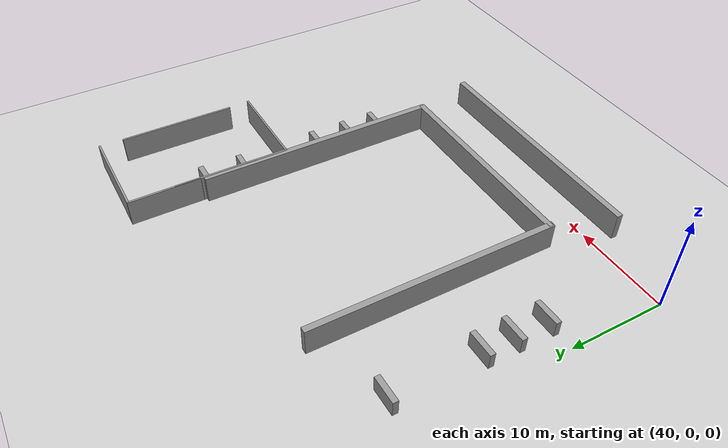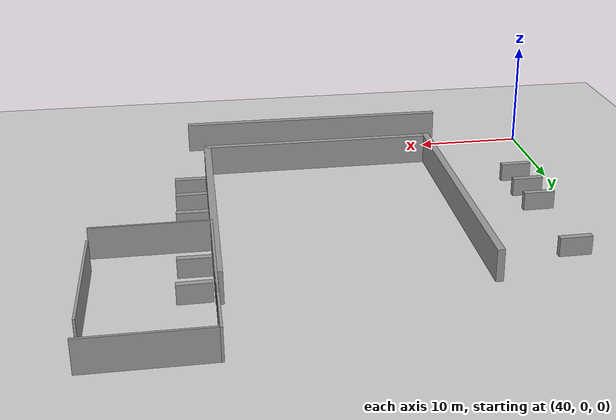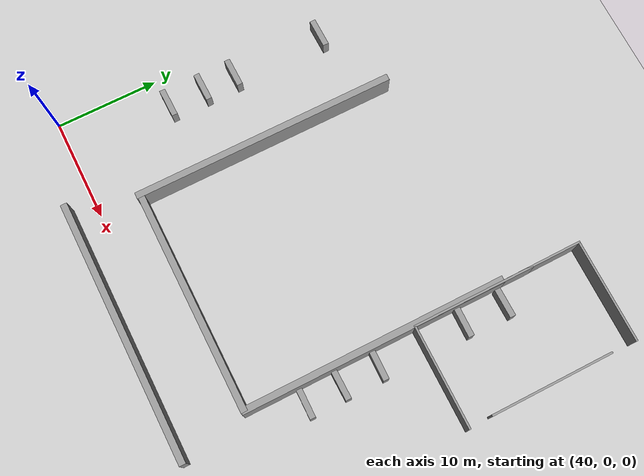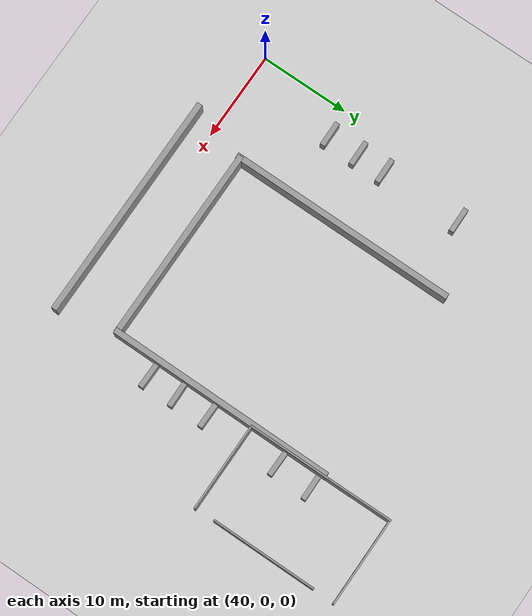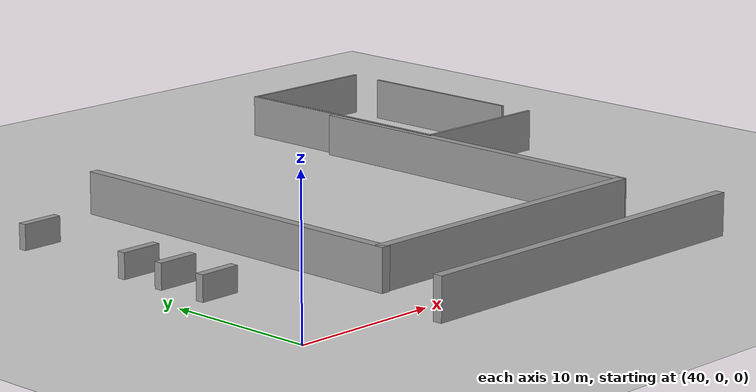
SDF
<sdf version="1.7">
 <world name="default">
  <model name="ground_plane">
   <static>1</static>
   <link name="link">
    <collision name="collision">
     <geometry><plane><normal>0 0 1</normal><size>100 100</size></plane></geometry>
     <surface><friction><ode><mu>100</mu><mu2>50</mu2></ode></friction></surface>
    </collision>
    <visual name="visual">
     <cast_shadows>0</cast_shadows>
     <geometry><plane><normal>0 0 1</normal><size>100 100</size></plane></geometry>
     <material>
      <script><uri>file://media/materials/scripts/gazebo.material</uri><name>Gazebo/Grey</name></script>
     </material>
    </visual>
   </link>
  </model>
  <model name="grey_wall_long_1">
   <link name="link">
    <pose>0 0 1.37589 0 -0 0</pose>
    <inertial>
     <inertia><ixx>0</ixx><ixy>0</ixy><ixz>0</ixz><iyy>0</iyy><iyz>0</iyz><izz>0</izz></inertia>
     <mass>0</mass>
    </inertial>
    <visual name="visual">
     <cast_shadows>0</cast_shadows>
     <geometry><box><size>25.8815 0.642976 2.8</size></box></geometry>
     <material>
      <script>
       <uri>model://grey_wall/materials/scripts</uri>
       <uri>model://grey_wall/materials/textures</uri>
       <name>vrc/grey_wall</name>
      </script>
      <shader type="pixel"><normal_map>__default__</normal_map></shader>
      <ambient>1 1 1 1</ambient>
      <diffuse>1 1 1 1</diffuse>
      <specular>0 0 0 1</specular>
      <emissive>0 0 0 1</emissive>
     </material>
    </visual>
    <collision name="collision">
     <geometry><box><size>25.8815 0.642976 2.8</size></box></geometry>
     <surface>
      <friction>
       <ode><mu>1</mu><mu2>1</mu2><fdir1>0 0 0</fdir1><slip1>0</slip1><slip2>0</slip2></ode>
       <torsional>
        <coefficient>1</coefficient>
        <patch_radius>0</patch_radius>
        <surface_radius>0</surface_radius>
        <use_patch_radius>1</use_patch_radius>
        <ode><slip>0</slip></ode>
       </torsional>
      </friction>
      <bounce><restitution_coefficient>0</restitution_coefficient><threshold>1e+06</threshold></bounce>
      <contact>
       <collide_without_contact>0</collide_without_contact>
       <collide_without_contact_bitmask>1</collide_without_contact_bitmask>
       <collide_bitmask>1</collide_bitmask>
       <ode>
        <soft_cfm>0</soft_cfm>
        <soft_erp>0.2</soft_erp>
        <kp>1e+13</kp>
        <kd>1</kd>
        <max_vel>0.01</max_vel>
        <min_depth>0</min_depth>
       </ode>
       <bullet>
        <split_impulse>1</split_impulse>
        <split_impulse_penetration_threshold>-0.01</split_impulse_penetration_threshold>
        <soft_cfm>0</soft_cfm>
        <soft_erp>0.2</soft_erp>
        <kp>1e+13</kp>
        <kd>1</kd>
       </bullet>
      </contact>
     </surface>
    </collision>
   </link>
   <static>1</static>
   <pose>61.3257 -2.37865 0 0 -0 0</pose>
  </model>
  <model name="grew_wall_long_vertial_1_clone_clone_2">
   <model name="grey_wall_long">
    <link name="link">
     <pose>0 0 1.37589 0 -0 0</pose>
     <inertial>
      <inertia><ixx>0</ixx><ixy>0</ixy><ixz>0</ixz><iyy>0</iyy><iyz>0</iyz><izz>0</izz></inertia>
      <mass>0</mass>
     </inertial>
     <visual name="visual">
      <cast_shadows>0</cast_shadows>
      <geometry><box><size>25.8815 0.642976 2.8</size></box></geometry>
      <material>
       <script>
        <uri>model://grey_wall/materials/scripts</uri>
        <uri>model://grey_wall/materials/textures</uri>
        <name>vrc/grey_wall</name>
       </script>
       <shader type="pixel"><normal_map>__default__</normal_map></shader>
       <ambient>1 1 1 1</ambient>
       <diffuse>1 1 1 1</diffuse>
       <specular>0 0 0 1</specular>
       <emissive>0 0 0 1</emissive>
      </material>
     </visual>
     <collision name="collision">
      <geometry><box><size>25.8815 0.642976 2.8</size></box></geometry>
      <surface>
       <friction>
        <ode><mu>1</mu><mu2>1</mu2><fdir1>0 0 0</fdir1><slip1>0</slip1><slip2>0</slip2></ode>
        <torsional>
         <coefficient>1</coefficient>
         <patch_radius>0</patch_radius>
         <surface_radius>0</surface_radius>
         <use_patch_radius>1</use_patch_radius>
         <ode><slip>0</slip></ode>
        </torsional>
       </friction>
       <bounce><restitution_coefficient>0</restitution_coefficient><threshold>1e+06</threshold></bounce>
       <contact>
        <collide_without_contact>0</collide_without_contact>
        <collide_without_contact_bitmask>1</collide_without_contact_bitmask>
        <collide_bitmask>1</collide_bitmask>
        <ode>
         <soft_cfm>0</soft_cfm>
         <soft_erp>0.2</soft_erp>
         <kp>1e+13</kp>
         <kd>1</kd>
         <max_vel>0.01</max_vel>
         <min_depth>0</min_depth>
        </ode>
        <bullet>
         <split_impulse>1</split_impulse>
         <split_impulse_penetration_threshold>-0.01</split_impulse_penetration_threshold>
         <soft_cfm>0</soft_cfm>
         <soft_erp>0.2</soft_erp>
         <kp>1e+13</kp>
         <kd>1</kd>
        </bullet>
       </contact>
      </surface>
     </collision>
    </link>
    <static>1</static>
    <pose>1e-06 -0 0 0 -0 1.57003</pose>
   </model>
   <static>0</static>
   <pose>50.6699 16.7376 0 0 -0 0</pose>
  </model>
  <model name="grey_wall_long_term_clone_1">
   <link name="link">
    <pose>-1.74587 -0.378849 1.37589 0 -0 0</pose>
    <inertial>
     <inertia><ixx>0</ixx><ixy>0</ixy><ixz>0</ixz><iyy>0</iyy><iyz>0</iyz><izz>0</izz></inertia>
     <mass>0</mass>
    </inertial>
    <visual name="visual">
     <cast_shadows>0</cast_shadows>
     <geometry><box><size>22.1596 0.642976 2.8</size></box></geometry>
     <material>
      <script>
       <uri>model://grey_wall/materials/scripts</uri>
       <uri>model://grey_wall/materials/textures</uri>
       <name>vrc/grey_wall</name>
      </script>
      <shader type="pixel"><normal_map>__default__</normal_map></shader>
      <ambient>1 1 1 1</ambient>
      <diffuse>1 1 1 1</diffuse>
      <specular>0 0 0 1</specular>
      <emissive>0 0 0 1</emissive>
     </material>
    </visual>
    <collision name="collision">
     <geometry><box><size>22.1596 0.642976 2.8</size></box></geometry>
     <surface>
      <friction>
       <ode><mu>1</mu><mu2>1</mu2><fdir1>0 0 0</fdir1><slip1>0</slip1><slip2>0</slip2></ode>
       <torsional>
        <coefficient>1</coefficient>
        <patch_radius>0</patch_radius>
        <surface_radius>0</surface_radius>
        <use_patch_radius>1</use_patch_radius>
        <ode><slip>0</slip></ode>
       </torsional>
      </friction>
      <bounce><restitution_coefficient>0</restitution_coefficient><threshold>1e+06</threshold></bounce>
      <contact>
       <collide_without_contact>0</collide_without_contact>
       <collide_without_contact_bitmask>1</collide_without_contact_bitmask>
       <collide_bitmask>1</collide_bitmask>
       <ode>
        <soft_cfm>0</soft_cfm>
        <soft_erp>0.2</soft_erp>
        <kp>1e+13</kp>
        <kd>1</kd>
        <max_vel>0.01</max_vel>
        <min_depth>0</min_depth>
       </ode>
       <bullet>
        <split_impulse>1</split_impulse>
        <split_impulse_penetration_threshold>-0.01</split_impulse_penetration_threshold>
        <soft_cfm>0</soft_cfm>
        <soft_erp>0.2</soft_erp>
        <kp>1e+13</kp>
        <kd>1</kd>
       </bullet>
      </contact>
     </surface>
    </collision>
   </link>
   <static>1</static>
   <pose>63.3055 4.59056 0 0 -0 0</pose>
  </model>
  <model name="grew_wall_long_vertial_1_clone_clone_4">
   <model name="grey_wall_long">
    <link name="link">
     <pose>0 0 1.37589 0 -0 0</pose>
     <inertial>
      <inertia><ixx>0</ixx><ixy>0</ixy><ixz>0</ixz><iyy>0</iyy><iyz>0</iyz><izz>0</izz></inertia>
      <mass>0</mass>
     </inertial>
     <visual name="visual">
      <cast_shadows>0</cast_shadows>
      <geometry><box><size>25.8815 0.642976 2.8</size></box></geometry>
      <material>
       <script>
        <uri>model://grey_wall/materials/scripts</uri>
        <uri>model://grey_wall/materials/textures</uri>
        <name>vrc/grey_wall</name>
       </script>
       <shader type="pixel"><normal_map>__default__</normal_map></shader>
       <ambient>1 1 1 1</ambient>
       <diffuse>1 1 1 1</diffuse>
       <specular>0 0 0 1</specular>
       <emissive>0 0 0 1</emissive>
      </material>
     </visual>
     <collision name="collision">
      <geometry><box><size>25.8815 0.642976 2.8</size></box></geometry>
      <surface>
       <friction>
        <ode><mu>1</mu><mu2>1</mu2><fdir1>0 0 0</fdir1><slip1>0</slip1><slip2>0</slip2></ode>
        <torsional>
         <coefficient>1</coefficient>
         <patch_radius>0</patch_radius>
         <surface_radius>0</surface_radius>
         <use_patch_radius>1</use_patch_radius>
         <ode><slip>0</slip></ode>
        </torsional>
       </friction>
       <bounce><restitution_coefficient>0</restitution_coefficient><threshold>1e+06</threshold></bounce>
       <contact>
        <collide_without_contact>0</collide_without_contact>
        <collide_without_contact_bitmask>1</collide_without_contact_bitmask>
        <collide_bitmask>1</collide_bitmask>
        <ode>
         <soft_cfm>0</soft_cfm>
         <soft_erp>0.2</soft_erp>
         <kp>1e+13</kp>
         <kd>1</kd>
         <max_vel>0.01</max_vel>
         <min_depth>0</min_depth>
        </ode>
        <bullet>
         <split_impulse>1</split_impulse>
         <split_impulse_penetration_threshold>-0.01</split_impulse_penetration_threshold>
         <soft_cfm>0</soft_cfm>
         <soft_erp>0.2</soft_erp>
         <kp>1e+13</kp>
         <kd>1</kd>
        </bullet>
       </contact>
      </surface>
     </collision>
    </link>
    <static>1</static>
    <pose>1e-06 -0 0 0 -0 1.57003</pose>
   </model>
   <static>0</static>
   <pose>72.5067 16.8857 0 0 -0 0</pose>
  </model>
  <model name="jiaoshi_clone_clone_clone_0_clone_0">
   <model name="grey_wall">
    <static>1</static>
    <link name="link">
     <pose>0 0 1.4 0 -0 0</pose>
     <collision name="collision"><geometry><box><size>7.5 0.2 2.8</size></box></geometry></collision>
     <visual name="visual">
      <cast_shadows>0</cast_shadows>
      <geometry><box><size>7.5 0.2 2.8</size></box></geometry>
      <material>
       <script>
        <uri>model://grey_wall/materials/scripts</uri>
        <uri>model://grey_wall/materials/textures</uri>
        <name>vrc/grey_wall</name>
       </script>
      </material>
     </visual>
    </link>
    <pose>-3.38172 4.2623 0 0 0 -1.56473</pose>
   </model>
   <model name="grey_wall_10m">
    <link name="link">
     <pose>1.25079 -0.023082 1.4 0 -0 0</pose>
     <inertial>
      <inertia><ixx>0</ixx><ixy>0</ixy><ixz>0</ixz><iyy>0</iyy><iyz>0</iyz><izz>0</izz></inertia>
      <mass>0</mass>
     </inertial>
     <visual name="visual">
      <cast_shadows>0</cast_shadows>
      <geometry><box><size>10.0157 0.2 2.8</size></box></geometry>
      <material>
       <script>
        <uri>model://grey_wall/materials/scripts</uri>
        <uri>model://grey_wall/materials/textures</uri>
        <name>vrc/grey_wall</name>
       </script>
       <shader type="pixel"/>
       <ambient>1 1 1 1</ambient>
       <diffuse>1 1 1 1</diffuse>
       <specular>0 0 0 1</specular>
       <emissive>0 0 0 1</emissive>
      </material>
     </visual>
     <collision name="collision">
      <geometry><box><size>10.0157 0.2 2.8</size></box></geometry>
      <surface>
       <friction>
        <ode><mu>1</mu><mu2>1</mu2><fdir1>0 0 0</fdir1><slip1>0</slip1><slip2>0</slip2></ode>
        <torsional>
         <coefficient>1</coefficient>
         <patch_radius>0</patch_radius>
         <surface_radius>0</surface_radius>
         <use_patch_radius>1</use_patch_radius>
         <ode><slip>0</slip></ode>
        </torsional>
       </friction>
       <bounce><restitution_coefficient>0</restitution_coefficient><threshold>1e+06</threshold></bounce>
       <contact>
        <collide_without_contact>0</collide_without_contact>
        <collide_without_contact_bitmask>1</collide_without_contact_bitmask>
        <collide_bitmask>1</collide_bitmask>
        <ode>
         <soft_cfm>0</soft_cfm>
         <soft_erp>0.2</soft_erp>
         <kp>1e+13</kp>
         <kd>1</kd>
         <max_vel>0.01</max_vel>
         <min_depth>0</min_depth>
        </ode>
        <bullet>
         <split_impulse>1</split_impulse>
         <split_impulse_penetration_threshold>-0.01</split_impulse_penetration_threshold>
         <soft_cfm>0</soft_cfm>
         <soft_erp>0.2</soft_erp>
         <kp>1e+13</kp>
         <kd>1</kd>
        </bullet>
       </contact>
      </surface>
     </collision>
    </link>
    <static>1</static>
    <pose>0.433183 -8.77625 0 0 -0 0</pose>
   </model>
   <model name="grey_wall_10m_0">
    <link name="link">
     <pose>1.25079 -0.023082 1.4 0 -0 0</pose>
     <inertial>
      <inertia><ixx>0</ixx><ixy>0</ixy><ixz>0</ixz><iyy>0</iyy><iyz>0</iyz><izz>0</izz></inertia>
      <mass>0</mass>
     </inertial>
     <visual name="visual">
      <cast_shadows>0</cast_shadows>
      <geometry><box><size>10.0157 0.2 2.8</size></box></geometry>
      <material>
       <script>
        <uri>model://grey_wall/materials/scripts</uri>
        <uri>model://grey_wall/materials/textures</uri>
        <name>vrc/grey_wall</name>
       </script>
       <shader type="pixel"/>
       <ambient>1 1 1 1</ambient>
       <diffuse>1 1 1 1</diffuse>
       <specular>0 0 0 1</specular>
       <emissive>0 0 0 1</emissive>
      </material>
     </visual>
     <collision name="collision">
      <geometry><box><size>10.0157 0.2 2.8</size></box></geometry>
      <surface>
       <friction>
        <ode><mu>1</mu><mu2>1</mu2><fdir1>0 0 0</fdir1><slip1>0</slip1><slip2>0</slip2></ode>
        <torsional>
         <coefficient>1</coefficient>
         <patch_radius>0</patch_radius>
         <surface_radius>0</surface_radius>
         <use_patch_radius>1</use_patch_radius>
         <ode><slip>0</slip></ode>
        </torsional>
       </friction>
       <bounce><restitution_coefficient>0</restitution_coefficient><threshold>1e+06</threshold></bounce>
       <contact>
        <collide_without_contact>0</collide_without_contact>
        <collide_without_contact_bitmask>1</collide_without_contact_bitmask>
        <collide_bitmask>1</collide_bitmask>
        <ode>
         <soft_cfm>0</soft_cfm>
         <soft_erp>0.2</soft_erp>
         <kp>1e+13</kp>
         <kd>1</kd>
         <max_vel>0.01</max_vel>
         <min_depth>0</min_depth>
        </ode>
        <bullet>
         <split_impulse>1</split_impulse>
         <split_impulse_penetration_threshold>-0.01</split_impulse_penetration_threshold>
         <soft_cfm>0</soft_cfm>
         <soft_erp>0.2</soft_erp>
         <kp>1e+13</kp>
         <kd>1</kd>
        </bullet>
       </contact>
      </surface>
     </collision>
    </link>
    <static>1</static>
    <pose>0.377364 7.92573 0 0 -0 0</pose>
   </model>
   <model name="grey_wall_12m_vertial">
    <link name="link">
     <pose>0.289112 -0.003891 1.4 0 0 -1.5701</pose>
     <inertial>
      <inertia><ixx>0</ixx><ixy>0</ixy><ixz>0</ixz><iyy>0</iyy><iyz>0</iyz><izz>0</izz></inertia>
      <mass>0</mass>
     </inertial>
     <visual name="visual">
      <cast_shadows>0</cast_shadows>
      <geometry><box><size>12.0527 0.2 2.8</size></box></geometry>
      <material>
       <script>
        <uri>model://grey_wall/materials/scripts</uri>
        <uri>model://grey_wall/materials/textures</uri>
        <name>vrc/grey_wall</name>
       </script>
       <shader type="pixel"/>
       <ambient>1 1 1 1</ambient>
       <diffuse>1 1 1 1</diffuse>
       <specular>0 0 0 1</specular>
       <emissive>0 0 0 1</emissive>
      </material>
     </visual>
     <collision name="collision">
      <geometry><box><size>12.0527 0.2 2.8</size></box></geometry>
      <surface>
       <friction>
        <ode><mu>1</mu><mu2>1</mu2><fdir1>0 0 0</fdir1><slip1>0</slip1><slip2>0</slip2></ode>
        <torsional>
         <coefficient>1</coefficient>
         <patch_radius>0</patch_radius>
         <surface_radius>0</surface_radius>
         <use_patch_radius>1</use_patch_radius>
         <ode><slip>0</slip></ode>
        </torsional>
       </friction>
       <bounce><restitution_coefficient>0</restitution_coefficient><threshold>1e+06</threshold></bounce>
       <contact>
        <collide_without_contact>0</collide_without_contact>
        <collide_without_contact_bitmask>1</collide_without_contact_bitmask>
        <collide_bitmask>1</collide_bitmask>
        <ode>
         <soft_cfm>0</soft_cfm>
         <soft_erp>0.2</soft_erp>
         <kp>1e+13</kp>
         <kd>1</kd>
         <max_vel>0.01</max_vel>
         <min_depth>0</min_depth>
        </ode>
        <bullet>
         <split_impulse>1</split_impulse>
         <split_impulse_penetration_threshold>-0.01</split_impulse_penetration_threshold>
         <soft_cfm>0</soft_cfm>
         <soft_erp>0.2</soft_erp>
         <kp>1e+13</kp>
         <kd>1</kd>
        </bullet>
       </contact>
      </surface>
     </collision>
    </link>
    <static>1</static>
    <pose>-3.63668 -2.87268 0 0 -0 0</pose>
   </model>
   <model name="grey_wall_12m_vertial_0">
    <link name="link">
     <pose>0.289112 -0.003891 1.4 0 0 -1.5701</pose>
     <inertial>
      <inertia><ixx>0</ixx><ixy>0</ixy><ixz>0</ixz><iyy>0</iyy><iyz>0</iyz><izz>0</izz></inertia>
      <mass>0</mass>
     </inertial>
     <visual name="visual">
      <cast_shadows>0</cast_shadows>
      <geometry><box><size>12.0527 0.2 2.8</size></box></geometry>
      <material>
       <script>
        <uri>model://grey_wall/materials/scripts</uri>
        <uri>model://grey_wall/materials/textures</uri>
        <name>vrc/grey_wall</name>
       </script>
       <shader type="pixel"/>
       <ambient>1 1 1 1</ambient>
       <diffuse>1 1 1 1</diffuse>
       <specular>0 0 0 1</specular>
       <emissive>0 0 0 1</emissive>
      </material>
     </visual>
     <collision name="collision">
      <geometry><box><size>12.0527 0.2 2.8</size></box></geometry>
      <surface>
       <friction>
        <ode><mu>1</mu><mu2>1</mu2><fdir1>0 0 0</fdir1><slip1>0</slip1><slip2>0</slip2></ode>
        <torsional>
         <coefficient>1</coefficient>
         <patch_radius>0</patch_radius>
         <surface_radius>0</surface_radius>
         <use_patch_radius>1</use_patch_radius>
         <ode><slip>0</slip></ode>
        </torsional>
       </friction>
       <bounce><restitution_coefficient>0</restitution_coefficient><threshold>1e+06</threshold></bounce>
       <contact>
        <collide_without_contact>0</collide_without_contact>
        <collide_without_contact_bitmask>1</collide_without_contact_bitmask>
        <collide_bitmask>1</collide_bitmask>
        <ode>
         <soft_cfm>0</soft_cfm>
         <soft_erp>0.2</soft_erp>
         <kp>1e+13</kp>
         <kd>1</kd>
         <max_vel>0.01</max_vel>
         <min_depth>0</min_depth>
        </ode>
        <bullet>
         <split_impulse>1</split_impulse>
         <split_impulse_penetration_threshold>-0.01</split_impulse_penetration_threshold>
         <soft_cfm>0</soft_cfm>
         <soft_erp>0.2</soft_erp>
         <kp>1e+13</kp>
         <kd>1</kd>
        </bullet>
       </contact>
      </surface>
     </collision>
    </link>
    <static>1</static>
    <pose>6.20786 -0.539083 0 0 -0 0</pose>
   </model>
   <static>0</static>
   <pose>76.058 29.6154 0 0 -0 0</pose>
  </model>
  <model name="unit_box_clone_27">
   <pose>43.2111 26.1763 0.834396 0 3.2e-05 0.013783</pose>
   <link name="link">
    <inertial>
     <mass>1</mass>
     <inertia>
      <ixx>0.166667</ixx>
      <ixy>0</ixy>
      <ixz>0</ixz>
      <iyy>0.166667</iyy>
      <iyz>0</iyz>
      <izz>0.166667</izz>
     </inertia>
    </inertial>
    <collision name="collision"><geometry><box><size>2.81196 0.562598 1.66888</size></box></geometry></collision>
    <visual name="visual">
     <geometry><box><size>2.81196 0.562598 1.66888</size></box></geometry>
     <material>
      <script><name>Gazebo/Grey</name><uri>file://media/materials/scripts/gazebo.material</uri></script>
     </material>
    </visual>
   </link>
  </model>
  <model name="unit_box_clone_29">
   <pose>43.1996 17.0437 0.834396 -0 3.2e-05 0.012777</pose>
   <link name="link">
    <inertial>
     <mass>1</mass>
     <inertia>
      <ixx>0.166667</ixx>
      <ixy>0</ixy>
      <ixz>0</ixz>
      <iyy>0.166667</iyy>
      <iyz>0</iyz>
      <izz>0.166667</izz>
     </inertia>
    </inertial>
    <collision name="collision"><geometry><box><size>2.81196 0.562598 1.66888</size></box></geometry></collision>
    <visual name="visual">
     <geometry><box><size>2.81196 0.562598 1.66888</size></box></geometry>
     <material>
      <script><name>Gazebo/Grey</name><uri>file://media/materials/scripts/gazebo.material</uri></script>
     </material>
    </visual>
   </link>
  </model>
  <model name="unit_box_clone_31">
   <pose>43.2009 13.8123 0.834396 0 3.2e-05 0.012901</pose>
   <link name="link">
    <inertial>
     <mass>1</mass>
     <inertia>
      <ixx>0.166667</ixx>
      <ixy>0</ixy>
      <ixz>0</ixz>
      <iyy>0.166667</iyy>
      <iyz>0</iyz>
      <izz>0.166667</izz>
     </inertia>
    </inertial>
    <collision name="collision"><geometry><box><size>2.81196 0.562598 1.66888</size></box></geometry></collision>
    <visual name="visual">
     <geometry><box><size>2.81196 0.562598 1.66888</size></box></geometry>
     <material>
      <script><name>Gazebo/Grey</name><uri>file://media/materials/scripts/gazebo.material</uri></script>
     </material>
    </visual>
   </link>
  </model>
  <model name="unit_box_clone_33">
   <pose>43.1981 10.2517 0.834396 0 -3.2e-05 0.013653</pose>
   <link name="link">
    <inertial>
     <mass>1</mass>
     <inertia>
      <ixx>0.166667</ixx>
      <ixy>0</ixy>
      <ixz>0</ixz>
      <iyy>0.166667</iyy>
      <iyz>0</iyz>
      <izz>0.166667</izz>
     </inertia>
    </inertial>
    <collision name="collision"><geometry><box><size>2.81196 0.562598 1.66888</size></box></geometry></collision>
    <visual name="visual">
     <geometry><box><size>2.81196 0.562598 1.66888</size></box></geometry>
     <material>
      <script><name>Gazebo/Grey</name><uri>file://media/materials/scripts/gazebo.material</uri></script>
     </material>
    </visual>
   </link>
  </model>
  <model name="unit_box_clone_42">
   <pose>74.3593 29.1594 0.834396 -0 -3.2e-05 0.013522</pose>
   <link name="link">
    <inertial>
     <mass>1</mass>
     <inertia>
      <ixx>0.166667</ixx>
      <ixy>0</ixy>
      <ixz>0</ixz>
      <iyy>0.166667</iyy>
      <iyz>0</iyz>
      <izz>0.166667</izz>
     </inertia>
    </inertial>
    <collision name="collision"><geometry><box><size>2.81196 0.562598 1.66888</size></box></geometry></collision>
    <visual name="visual">
     <geometry><box><size>2.81196 0.562598 1.66888</size></box></geometry>
     <material>
      <script><name>Gazebo/Grey</name><uri>file://media/materials/scripts/gazebo.material</uri></script>
     </material>
    </visual>
   </link>
  </model>
  <model name="unit_box_clone_44">
   <pose>74.254 25.0433 0.834396 0 3.2e-05 -0.0131</pose>
   <link name="link">
    <inertial>
     <mass>1</mass>
     <inertia>
      <ixx>0.166667</ixx>
      <ixy>0</ixy>
      <ixz>0</ixz>
      <iyy>0.166667</iyy>
      <iyz>0</iyz>
      <izz>0.166667</izz>
     </inertia>
    </inertial>
    <collision name="collision"><geometry><box><size>2.81196 0.562598 1.66888</size></box></geometry></collision>
    <visual name="visual">
     <geometry><box><size>2.81196 0.562598 1.66888</size></box></geometry>
     <material>
      <script><name>Gazebo/Grey</name><uri>file://media/materials/scripts/gazebo.material</uri></script>
     </material>
    </visual>
   </link>
  </model>
  <model name="unit_box_clone_46">
   <pose>74.2475 16.5043 0.834396 0 -3.2e-05 -0.012884</pose>
   <link name="link">
    <inertial>
     <mass>1</mass>
     <inertia>
      <ixx>0.166667</ixx>
      <ixy>0</ixy>
      <ixz>0</ixz>
      <iyy>0.166667</iyy>
      <iyz>0</iyz>
      <izz>0.166667</izz>
     </inertia>
    </inertial>
    <collision name="collision"><geometry><box><size>2.81196 0.562598 1.66888</size></box></geometry></collision>
    <visual name="visual">
     <geometry><box><size>2.81196 0.562598 1.66888</size></box></geometry>
     <material>
      <script><name>Gazebo/Grey</name><uri>file://media/materials/scripts/gazebo.material</uri></script>
     </material>
    </visual>
   </link>
  </model>
  <model name="unit_box_clone_48">
   <pose>74.2638 12.7447 0.834396 0 -3.2e-05 0.013621</pose>
   <link name="link">
    <inertial>
     <mass>1</mass>
     <inertia>
      <ixx>0.166667</ixx>
      <ixy>0</ixy>
      <ixz>0</ixz>
      <iyy>0.166667</iyy>
      <iyz>0</iyz>
      <izz>0.166667</izz>
     </inertia>
    </inertial>
    <collision name="collision"><geometry><box><size>2.81196 0.562598 1.66888</size></box></geometry></collision>
    <visual name="visual">
     <geometry><box><size>2.81196 0.562598 1.66888</size></box></geometry>
     <material>
      <script><name>Gazebo/Grey</name><uri>file://media/materials/scripts/gazebo.material</uri></script>
     </material>
    </visual>
   </link>
  </model>
  <model name="unit_box_clone_50">
   <pose>74.2982 9.26008 0.834396 -0 3.2e-05 -0.013807</pose>
   <link name="link">
    <inertial>
     <mass>1</mass>
     <inertia>
      <ixx>0.166667</ixx>
      <ixy>0</ixy>
      <ixz>0</ixz>
      <iyy>0.166667</iyy>
      <iyz>0</iyz>
      <izz>0.166667</izz>
     </inertia>
    </inertial>
    <collision name="collision"><geometry><box><size>2.81196 0.562598 1.66888</size></box></geometry></collision>
    <visual name="visual">
     <geometry><box><size>2.81196 0.562598 1.66888</size></box></geometry>
     <material>
      <script><name>Gazebo/Grey</name><uri>file://media/materials/scripts/gazebo.material</uri></script>
     </material>
    </visual>
   </link>
  </model>
 </world>
</sdf>
